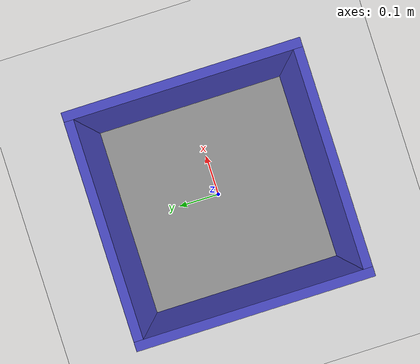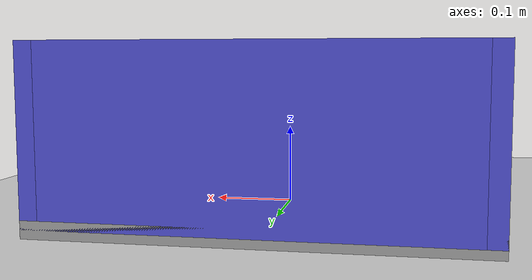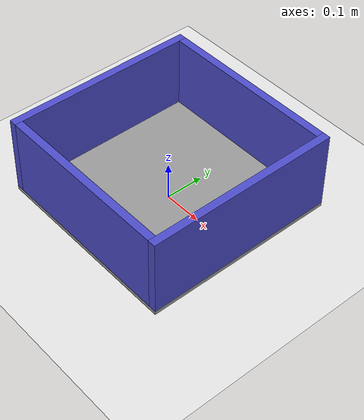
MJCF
<mujoco model="open_box">
  <compiler angle="degree"/>
  <option gravity="0 0 -9.81"/>

  <worldbody>
    <!-- Ground -->
    <geom name="ground" type="plane" size="2 2 0.1" pos="0 0 0" rgba="0.9 0.9 0.9 1"/>

    <!-- Open-top box (0.5 x 0.5 x 0.2 m) -->
    <body name="box" pos="0 0 0">

      <!-- Bottom -->
      <geom name="bottom"
            type="box"
            pos="0 0 0.01"
            size="0.25 0.25 0.01"
            rgba="0.6 0.6 0.6 1"/>

      <!-- +X wall -->
      <geom name="wall_px"
            type="box"
            pos="0.24 0 0.11"
            size="0.01 0.25 0.10"
            rgba="0.3 0.3 0.8 1"/>

      <!-- -X wall -->
      <geom name="wall_nx"
            type="box"
            pos="-0.24 0 0.11"
            size="0.01 0.25 0.10"
            rgba="0.3 0.3 0.8 1"/>

      <!-- +Y wall -->
      <geom name="wall_py"
            type="box"
            pos="0 0.24 0.11"
            size="0.23 0.01 0.10"
            rgba="0.3 0.3 0.8 1"/>

      <!-- -Y wall -->
      <geom name="wall_ny"
            type="box"
            pos="0 -0.24 0.11"
            size="0.23 0.01 0.10"
            rgba="0.3 0.3 0.8 1"/>

    </body>
  </worldbody>
</mujoco>
